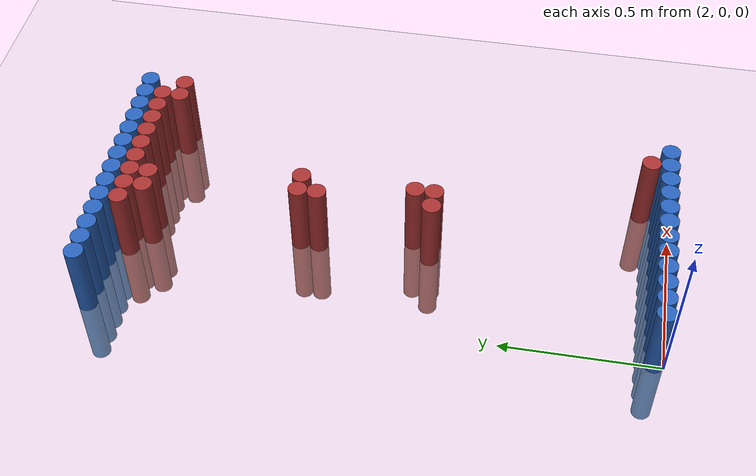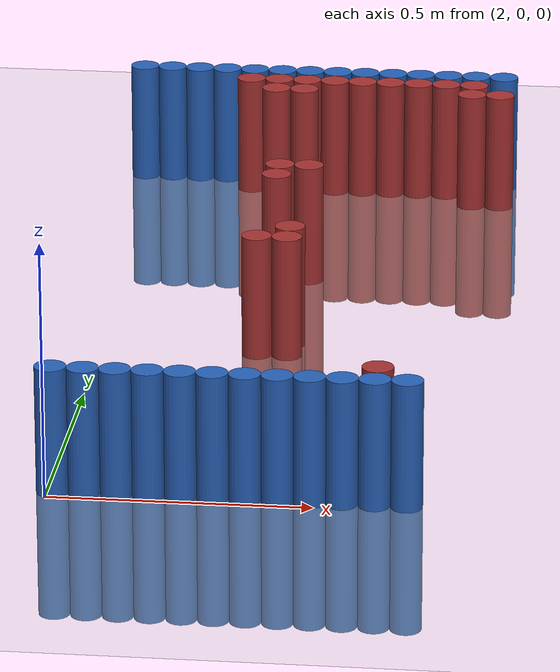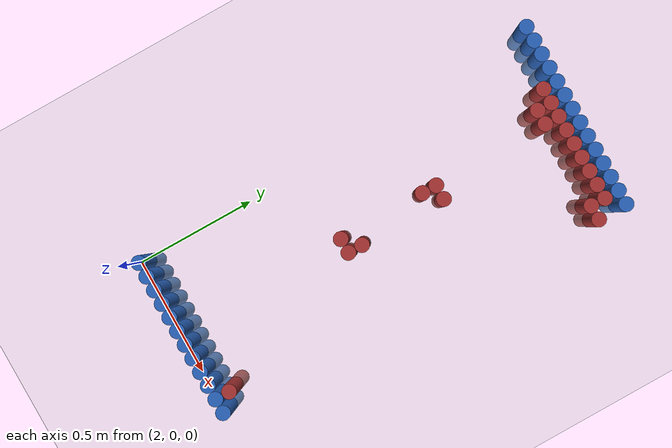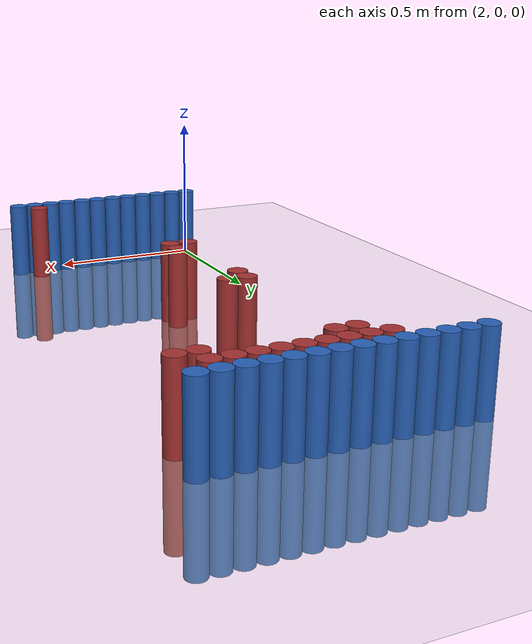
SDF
<sdf version="1.6">
 <world name="default">
  <model name="ground_plane">
   <static>1</static>
   <link name="link">
    <collision name="collision">
     <geometry><plane><normal>0 0 1</normal><size>100 100</size></plane></geometry>
     <surface><friction><ode><mu>100</mu><mu2>50</mu2></ode></friction></surface>
    </collision>
    <visual name="visual">
     <cast_shadows>0</cast_shadows>
     <geometry><plane><normal>0 0 1</normal><size>100 100</size></plane></geometry>
     <material>
      <script><uri>file://media/materials/scripts/gazebo.material</uri><name>Gazebo/Grey</name></script>
     </material>
    </visual>
   </link>
  </model>
  <model name="unit_cylinder_92">
   <static>1</static>
   <pose>1.950000 1.770000 0.000000 0.000000 0.000000 0.000000</pose>
   <link name="link">
    <inertial>
     <mass>1</mass>
     <inertia><ixx>0.145833</ixx><ixy>0</ixy><ixz>0</ixz><iyy>0.145833</iyy><iyz>0</iyz><izz>0.125</izz></inertia>
    </inertial>
    <collision name="collision">
     <geometry><cylinder><radius>0.030000</radius><length>0.5</length></cylinder></geometry>
    </collision>
    <visual name="visual">
     <geometry><cylinder><radius>0.030000</radius><length>0.5</length></cylinder></geometry>
     <material>
      <ambient>0.152000 0.379000 0.720000 1</ambient>
      <diffuse>0.152000 0.379000 0.720000 1</diffuse>
     </material>
     <material>
      <script><name>Gazebo/Grey</name><uri>file://media/materials/scripts/gazebo.material</uri></script>
     </material>
    </visual>
   </link>
  </model>
  <model name="unit_cylinder_93">
   <static>1</static>
   <pose>2.010000 0.030000 0.000000 0.000000 0.000000 0.000000</pose>
   <link name="link">
    <inertial>
     <mass>1</mass>
     <inertia><ixx>0.145833</ixx><ixy>0</ixy><ixz>0</ixz><iyy>0.145833</iyy><iyz>0</iyz><izz>0.125</izz></inertia>
    </inertial>
    <collision name="collision">
     <geometry><cylinder><radius>0.030000</radius><length>0.5</length></cylinder></geometry>
    </collision>
    <visual name="visual">
     <geometry><cylinder><radius>0.030000</radius><length>0.5</length></cylinder></geometry>
     <material>
      <ambient>0.152000 0.379000 0.720000 1</ambient>
      <diffuse>0.152000 0.379000 0.720000 1</diffuse>
     </material>
     <material>
      <script><name>Gazebo/Grey</name><uri>file://media/materials/scripts/gazebo.material</uri></script>
     </material>
    </visual>
   </link>
  </model>
  <model name="unit_cylinder_94">
   <static>1</static>
   <pose>2.010000 1.770000 0.000000 0.000000 0.000000 0.000000</pose>
   <link name="link">
    <inertial>
     <mass>1</mass>
     <inertia><ixx>0.145833</ixx><ixy>0</ixy><ixz>0</ixz><iyy>0.145833</iyy><iyz>0</iyz><izz>0.125</izz></inertia>
    </inertial>
    <collision name="collision">
     <geometry><cylinder><radius>0.030000</radius><length>0.5</length></cylinder></geometry>
    </collision>
    <visual name="visual">
     <geometry><cylinder><radius>0.030000</radius><length>0.5</length></cylinder></geometry>
     <material>
      <ambient>0.152000 0.379000 0.720000 1</ambient>
      <diffuse>0.152000 0.379000 0.720000 1</diffuse>
     </material>
     <material>
      <script><name>Gazebo/Grey</name><uri>file://media/materials/scripts/gazebo.material</uri></script>
     </material>
    </visual>
   </link>
  </model>
  <model name="unit_cylinder_95">
   <static>1</static>
   <pose>2.070000 1.770000 0.000000 0.000000 0.000000 0.000000</pose>
   <link name="link">
    <inertial>
     <mass>1</mass>
     <inertia><ixx>0.145833</ixx><ixy>0</ixy><ixz>0</ixz><iyy>0.145833</iyy><iyz>0</iyz><izz>0.125</izz></inertia>
    </inertial>
    <collision name="collision">
     <geometry><cylinder><radius>0.030000</radius><length>0.5</length></cylinder></geometry>
    </collision>
    <visual name="visual">
     <geometry><cylinder><radius>0.030000</radius><length>0.5</length></cylinder></geometry>
     <material>
      <ambient>0.152000 0.379000 0.720000 1</ambient>
      <diffuse>0.152000 0.379000 0.720000 1</diffuse>
     </material>
     <material>
      <script><name>Gazebo/Grey</name><uri>file://media/materials/scripts/gazebo.material</uri></script>
     </material>
    </visual>
   </link>
  </model>
  <model name="unit_cylinder_96">
   <static>1</static>
   <pose>2.130000 1.770000 0.000000 0.000000 0.000000 0.000000</pose>
   <link name="link">
    <inertial>
     <mass>1</mass>
     <inertia><ixx>0.145833</ixx><ixy>0</ixy><ixz>0</ixz><iyy>0.145833</iyy><iyz>0</iyz><izz>0.125</izz></inertia>
    </inertial>
    <collision name="collision">
     <geometry><cylinder><radius>0.030000</radius><length>0.5</length></cylinder></geometry>
    </collision>
    <visual name="visual">
     <geometry><cylinder><radius>0.030000</radius><length>0.5</length></cylinder></geometry>
     <material>
      <ambient>0.152000 0.379000 0.720000 1</ambient>
      <diffuse>0.152000 0.379000 0.720000 1</diffuse>
     </material>
     <material>
      <script><name>Gazebo/Grey</name><uri>file://media/materials/scripts/gazebo.material</uri></script>
     </material>
    </visual>
   </link>
  </model>
  <model name="unit_cylinder_97">
   <static>1</static>
   <pose>2.190000 1.770000 0.000000 0.000000 0.000000 0.000000</pose>
   <link name="link">
    <inertial>
     <mass>1</mass>
     <inertia><ixx>0.145833</ixx><ixy>0</ixy><ixz>0</ixz><iyy>0.145833</iyy><iyz>0</iyz><izz>0.125</izz></inertia>
    </inertial>
    <collision name="collision">
     <geometry><cylinder><radius>0.030000</radius><length>0.5</length></cylinder></geometry>
    </collision>
    <visual name="visual">
     <geometry><cylinder><radius>0.030000</radius><length>0.5</length></cylinder></geometry>
     <material>
      <ambient>0.152000 0.379000 0.720000 1</ambient>
      <diffuse>0.152000 0.379000 0.720000 1</diffuse>
     </material>
     <material>
      <script><name>Gazebo/Grey</name><uri>file://media/materials/scripts/gazebo.material</uri></script>
     </material>
    </visual>
   </link>
  </model>
  <model name="unit_cylinder_98">
   <static>1</static>
   <pose>2.250000 1.770000 0.000000 0.000000 0.000000 0.000000</pose>
   <link name="link">
    <inertial>
     <mass>1</mass>
     <inertia><ixx>0.145833</ixx><ixy>0</ixy><ixz>0</ixz><iyy>0.145833</iyy><iyz>0</iyz><izz>0.125</izz></inertia>
    </inertial>
    <collision name="collision">
     <geometry><cylinder><radius>0.030000</radius><length>0.5</length></cylinder></geometry>
    </collision>
    <visual name="visual">
     <geometry><cylinder><radius>0.030000</radius><length>0.5</length></cylinder></geometry>
     <material>
      <ambient>0.152000 0.379000 0.720000 1</ambient>
      <diffuse>0.152000 0.379000 0.720000 1</diffuse>
     </material>
     <material>
      <script><name>Gazebo/Grey</name><uri>file://media/materials/scripts/gazebo.material</uri></script>
     </material>
    </visual>
   </link>
  </model>
  <model name="unit_cylinder_99">
   <static>1</static>
   <pose>2.310000 1.770000 0.000000 0.000000 0.000000 0.000000</pose>
   <link name="link">
    <inertial>
     <mass>1</mass>
     <inertia><ixx>0.145833</ixx><ixy>0</ixy><ixz>0</ixz><iyy>0.145833</iyy><iyz>0</iyz><izz>0.125</izz></inertia>
    </inertial>
    <collision name="collision">
     <geometry><cylinder><radius>0.030000</radius><length>0.5</length></cylinder></geometry>
    </collision>
    <visual name="visual">
     <geometry><cylinder><radius>0.030000</radius><length>0.5</length></cylinder></geometry>
     <material>
      <ambient>0.152000 0.379000 0.720000 1</ambient>
      <diffuse>0.152000 0.379000 0.720000 1</diffuse>
     </material>
     <material>
      <script><name>Gazebo/Grey</name><uri>file://media/materials/scripts/gazebo.material</uri></script>
     </material>
    </visual>
   </link>
  </model>
  <model name="unit_cylinder_100">
   <static>1</static>
   <pose>2.370000 1.770000 0.000000 0.000000 0.000000 0.000000</pose>
   <link name="link">
    <inertial>
     <mass>1</mass>
     <inertia><ixx>0.145833</ixx><ixy>0</ixy><ixz>0</ixz><iyy>0.145833</iyy><iyz>0</iyz><izz>0.125</izz></inertia>
    </inertial>
    <collision name="collision">
     <geometry><cylinder><radius>0.030000</radius><length>0.5</length></cylinder></geometry>
    </collision>
    <visual name="visual">
     <geometry><cylinder><radius>0.030000</radius><length>0.5</length></cylinder></geometry>
     <material>
      <ambient>0.152000 0.379000 0.720000 1</ambient>
      <diffuse>0.152000 0.379000 0.720000 1</diffuse>
     </material>
     <material>
      <script><name>Gazebo/Grey</name><uri>file://media/materials/scripts/gazebo.material</uri></script>
     </material>
    </visual>
   </link>
  </model>
  <model name="unit_cylinder_101">
   <static>1</static>
   <pose>2.430000 1.770000 0.000000 0.000000 0.000000 0.000000</pose>
   <link name="link">
    <inertial>
     <mass>1</mass>
     <inertia><ixx>0.145833</ixx><ixy>0</ixy><ixz>0</ixz><iyy>0.145833</iyy><iyz>0</iyz><izz>0.125</izz></inertia>
    </inertial>
    <collision name="collision">
     <geometry><cylinder><radius>0.030000</radius><length>0.5</length></cylinder></geometry>
    </collision>
    <visual name="visual">
     <geometry><cylinder><radius>0.030000</radius><length>0.5</length></cylinder></geometry>
     <material>
      <ambient>0.152000 0.379000 0.720000 1</ambient>
      <diffuse>0.152000 0.379000 0.720000 1</diffuse>
     </material>
     <material>
      <script><name>Gazebo/Grey</name><uri>file://media/materials/scripts/gazebo.material</uri></script>
     </material>
    </visual>
   </link>
  </model>
  <model name="unit_cylinder_102">
   <static>1</static>
   <pose>2.490000 1.770000 0.000000 0.000000 0.000000 0.000000</pose>
   <link name="link">
    <inertial>
     <mass>1</mass>
     <inertia><ixx>0.145833</ixx><ixy>0</ixy><ixz>0</ixz><iyy>0.145833</iyy><iyz>0</iyz><izz>0.125</izz></inertia>
    </inertial>
    <collision name="collision">
     <geometry><cylinder><radius>0.030000</radius><length>0.5</length></cylinder></geometry>
    </collision>
    <visual name="visual">
     <geometry><cylinder><radius>0.030000</radius><length>0.5</length></cylinder></geometry>
     <material>
      <ambient>0.152000 0.379000 0.720000 1</ambient>
      <diffuse>0.152000 0.379000 0.720000 1</diffuse>
     </material>
     <material>
      <script><name>Gazebo/Grey</name><uri>file://media/materials/scripts/gazebo.material</uri></script>
     </material>
    </visual>
   </link>
  </model>
  <model name="unit_cylinder_103">
   <static>1</static>
   <pose>2.550000 1.770000 0.000000 0.000000 0.000000 0.000000</pose>
   <link name="link">
    <inertial>
     <mass>1</mass>
     <inertia><ixx>0.145833</ixx><ixy>0</ixy><ixz>0</ixz><iyy>0.145833</iyy><iyz>0</iyz><izz>0.125</izz></inertia>
    </inertial>
    <collision name="collision">
     <geometry><cylinder><radius>0.030000</radius><length>0.5</length></cylinder></geometry>
    </collision>
    <visual name="visual">
     <geometry><cylinder><radius>0.030000</radius><length>0.5</length></cylinder></geometry>
     <material>
      <ambient>0.152000 0.379000 0.720000 1</ambient>
      <diffuse>0.152000 0.379000 0.720000 1</diffuse>
     </material>
     <material>
      <script><name>Gazebo/Grey</name><uri>file://media/materials/scripts/gazebo.material</uri></script>
     </material>
    </visual>
   </link>
  </model>
  <model name="unit_cylinder_104">
   <static>1</static>
   <pose>2.610000 1.770000 0.000000 0.000000 0.000000 0.000000</pose>
   <link name="link">
    <inertial>
     <mass>1</mass>
     <inertia><ixx>0.145833</ixx><ixy>0</ixy><ixz>0</ixz><iyy>0.145833</iyy><iyz>0</iyz><izz>0.125</izz></inertia>
    </inertial>
    <collision name="collision">
     <geometry><cylinder><radius>0.030000</radius><length>0.5</length></cylinder></geometry>
    </collision>
    <visual name="visual">
     <geometry><cylinder><radius>0.030000</radius><length>0.5</length></cylinder></geometry>
     <material>
      <ambient>0.152000 0.379000 0.720000 1</ambient>
      <diffuse>0.152000 0.379000 0.720000 1</diffuse>
     </material>
     <material>
      <script><name>Gazebo/Grey</name><uri>file://media/materials/scripts/gazebo.material</uri></script>
     </material>
    </visual>
   </link>
  </model>
  <model name="unit_cylinder_105">
   <static>1</static>
   <pose>2.670000 1.770000 0.000000 0.000000 0.000000 0.000000</pose>
   <link name="link">
    <inertial>
     <mass>1</mass>
     <inertia><ixx>0.145833</ixx><ixy>0</ixy><ixz>0</ixz><iyy>0.145833</iyy><iyz>0</iyz><izz>0.125</izz></inertia>
    </inertial>
    <collision name="collision">
     <geometry><cylinder><radius>0.030000</radius><length>0.5</length></cylinder></geometry>
    </collision>
    <visual name="visual">
     <geometry><cylinder><radius>0.030000</radius><length>0.5</length></cylinder></geometry>
     <material>
      <ambient>0.152000 0.379000 0.720000 1</ambient>
      <diffuse>0.152000 0.379000 0.720000 1</diffuse>
     </material>
     <material>
      <script><name>Gazebo/Grey</name><uri>file://media/materials/scripts/gazebo.material</uri></script>
     </material>
    </visual>
   </link>
  </model>
  <model name="unit_cylinder_106">
   <static>1</static>
   <pose>2.730000 1.770000 0.000000 0.000000 0.000000 0.000000</pose>
   <link name="link">
    <inertial>
     <mass>1</mass>
     <inertia><ixx>0.145833</ixx><ixy>0</ixy><ixz>0</ixz><iyy>0.145833</iyy><iyz>0</iyz><izz>0.125</izz></inertia>
    </inertial>
    <collision name="collision">
     <geometry><cylinder><radius>0.030000</radius><length>0.5</length></cylinder></geometry>
    </collision>
    <visual name="visual">
     <geometry><cylinder><radius>0.030000</radius><length>0.5</length></cylinder></geometry>
     <material>
      <ambient>0.152000 0.379000 0.720000 1</ambient>
      <diffuse>0.152000 0.379000 0.720000 1</diffuse>
     </material>
     <material>
      <script><name>Gazebo/Grey</name><uri>file://media/materials/scripts/gazebo.material</uri></script>
     </material>
    </visual>
   </link>
  </model>
  <model name="unit_cylinder_125">
   <static>1</static>
   <pose>2.190000 1.710000 0.000000 0.000000 0.000000 0.000000</pose>
   <link name="link">
    <inertial>
     <mass>1</mass>
     <inertia><ixx>0.145833</ixx><ixy>0</ixy><ixz>0</ixz><iyy>0.145833</iyy><iyz>0</iyz><izz>0.125</izz></inertia>
    </inertial>
    <collision name="collision">
     <geometry><cylinder><radius>0.030000</radius><length>0.5</length></cylinder></geometry>
    </collision>
    <visual name="visual">
     <geometry><cylinder><radius>0.030000</radius><length>0.5</length></cylinder></geometry>
     <material>
      <ambient>0.648000 0.192000 0.192000 1</ambient>
      <diffuse>0.648000 0.192000 0.192000 1</diffuse>
     </material>
     <material>
      <script><name>Gazebo/Grey</name><uri>file://media/materials/scripts/gazebo.material</uri></script>
     </material>
    </visual>
   </link>
  </model>
  <model name="unit_cylinder_126">
   <static>1</static>
   <pose>2.250000 1.710000 0.000000 0.000000 0.000000 0.000000</pose>
   <link name="link">
    <inertial>
     <mass>1</mass>
     <inertia><ixx>0.145833</ixx><ixy>0</ixy><ixz>0</ixz><iyy>0.145833</iyy><iyz>0</iyz><izz>0.125</izz></inertia>
    </inertial>
    <collision name="collision">
     <geometry><cylinder><radius>0.030000</radius><length>0.5</length></cylinder></geometry>
    </collision>
    <visual name="visual">
     <geometry><cylinder><radius>0.030000</radius><length>0.5</length></cylinder></geometry>
     <material>
      <ambient>0.648000 0.192000 0.192000 1</ambient>
      <diffuse>0.648000 0.192000 0.192000 1</diffuse>
     </material>
     <material>
      <script><name>Gazebo/Grey</name><uri>file://media/materials/scripts/gazebo.material</uri></script>
     </material>
    </visual>
   </link>
  </model>
  <model name="unit_cylinder_127">
   <static>1</static>
   <pose>2.310000 1.710000 0.000000 0.000000 0.000000 0.000000</pose>
   <link name="link">
    <inertial>
     <mass>1</mass>
     <inertia><ixx>0.145833</ixx><ixy>0</ixy><ixz>0</ixz><iyy>0.145833</iyy><iyz>0</iyz><izz>0.125</izz></inertia>
    </inertial>
    <collision name="collision">
     <geometry><cylinder><radius>0.030000</radius><length>0.5</length></cylinder></geometry>
    </collision>
    <visual name="visual">
     <geometry><cylinder><radius>0.030000</radius><length>0.5</length></cylinder></geometry>
     <material>
      <ambient>0.648000 0.192000 0.192000 1</ambient>
      <diffuse>0.648000 0.192000 0.192000 1</diffuse>
     </material>
     <material>
      <script><name>Gazebo/Grey</name><uri>file://media/materials/scripts/gazebo.material</uri></script>
     </material>
    </visual>
   </link>
  </model>
  <model name="unit_cylinder_128">
   <static>1</static>
   <pose>2.370000 1.710000 0.000000 0.000000 0.000000 0.000000</pose>
   <link name="link">
    <inertial>
     <mass>1</mass>
     <inertia><ixx>0.145833</ixx><ixy>0</ixy><ixz>0</ixz><iyy>0.145833</iyy><iyz>0</iyz><izz>0.125</izz></inertia>
    </inertial>
    <collision name="collision">
     <geometry><cylinder><radius>0.030000</radius><length>0.5</length></cylinder></geometry>
    </collision>
    <visual name="visual">
     <geometry><cylinder><radius>0.030000</radius><length>0.5</length></cylinder></geometry>
     <material>
      <ambient>0.648000 0.192000 0.192000 1</ambient>
      <diffuse>0.648000 0.192000 0.192000 1</diffuse>
     </material>
     <material>
      <script><name>Gazebo/Grey</name><uri>file://media/materials/scripts/gazebo.material</uri></script>
     </material>
    </visual>
   </link>
  </model>
  <model name="unit_cylinder_129">
   <static>1</static>
   <pose>2.430000 1.710000 0.000000 0.000000 0.000000 0.000000</pose>
   <link name="link">
    <inertial>
     <mass>1</mass>
     <inertia><ixx>0.145833</ixx><ixy>0</ixy><ixz>0</ixz><iyy>0.145833</iyy><iyz>0</iyz><izz>0.125</izz></inertia>
    </inertial>
    <collision name="collision">
     <geometry><cylinder><radius>0.030000</radius><length>0.5</length></cylinder></geometry>
    </collision>
    <visual name="visual">
     <geometry><cylinder><radius>0.030000</radius><length>0.5</length></cylinder></geometry>
     <material>
      <ambient>0.648000 0.192000 0.192000 1</ambient>
      <diffuse>0.648000 0.192000 0.192000 1</diffuse>
     </material>
     <material>
      <script><name>Gazebo/Grey</name><uri>file://media/materials/scripts/gazebo.material</uri></script>
     </material>
    </visual>
   </link>
  </model>
  <model name="unit_cylinder_130">
   <static>1</static>
   <pose>2.490000 1.710000 0.000000 0.000000 0.000000 0.000000</pose>
   <link name="link">
    <inertial>
     <mass>1</mass>
     <inertia><ixx>0.145833</ixx><ixy>0</ixy><ixz>0</ixz><iyy>0.145833</iyy><iyz>0</iyz><izz>0.125</izz></inertia>
    </inertial>
    <collision name="collision">
     <geometry><cylinder><radius>0.030000</radius><length>0.5</length></cylinder></geometry>
    </collision>
    <visual name="visual">
     <geometry><cylinder><radius>0.030000</radius><length>0.5</length></cylinder></geometry>
     <material>
      <ambient>0.648000 0.192000 0.192000 1</ambient>
      <diffuse>0.648000 0.192000 0.192000 1</diffuse>
     </material>
     <material>
      <script><name>Gazebo/Grey</name><uri>file://media/materials/scripts/gazebo.material</uri></script>
     </material>
    </visual>
   </link>
  </model>
  <model name="unit_cylinder_131">
   <static>1</static>
   <pose>2.550000 1.710000 0.000000 0.000000 0.000000 0.000000</pose>
   <link name="link">
    <inertial>
     <mass>1</mass>
     <inertia><ixx>0.145833</ixx><ixy>0</ixy><ixz>0</ixz><iyy>0.145833</iyy><iyz>0</iyz><izz>0.125</izz></inertia>
    </inertial>
    <collision name="collision">
     <geometry><cylinder><radius>0.030000</radius><length>0.5</length></cylinder></geometry>
    </collision>
    <visual name="visual">
     <geometry><cylinder><radius>0.030000</radius><length>0.5</length></cylinder></geometry>
     <material>
      <ambient>0.648000 0.192000 0.192000 1</ambient>
      <diffuse>0.648000 0.192000 0.192000 1</diffuse>
     </material>
     <material>
      <script><name>Gazebo/Grey</name><uri>file://media/materials/scripts/gazebo.material</uri></script>
     </material>
    </visual>
   </link>
  </model>
  <model name="unit_cylinder_132">
   <static>1</static>
   <pose>2.610000 1.710000 0.000000 0.000000 0.000000 0.000000</pose>
   <link name="link">
    <inertial>
     <mass>1</mass>
     <inertia><ixx>0.145833</ixx><ixy>0</ixy><ixz>0</ixz><iyy>0.145833</iyy><iyz>0</iyz><izz>0.125</izz></inertia>
    </inertial>
    <collision name="collision">
     <geometry><cylinder><radius>0.030000</radius><length>0.5</length></cylinder></geometry>
    </collision>
    <visual name="visual">
     <geometry><cylinder><radius>0.030000</radius><length>0.5</length></cylinder></geometry>
     <material>
      <ambient>0.648000 0.192000 0.192000 1</ambient>
      <diffuse>0.648000 0.192000 0.192000 1</diffuse>
     </material>
     <material>
      <script><name>Gazebo/Grey</name><uri>file://media/materials/scripts/gazebo.material</uri></script>
     </material>
    </visual>
   </link>
  </model>
  <model name="unit_cylinder_133">
   <static>1</static>
   <pose>2.670000 1.710000 0.000000 0.000000 0.000000 0.000000</pose>
   <link name="link">
    <inertial>
     <mass>1</mass>
     <inertia><ixx>0.145833</ixx><ixy>0</ixy><ixz>0</ixz><iyy>0.145833</iyy><iyz>0</iyz><izz>0.125</izz></inertia>
    </inertial>
    <collision name="collision">
     <geometry><cylinder><radius>0.030000</radius><length>0.5</length></cylinder></geometry>
    </collision>
    <visual name="visual">
     <geometry><cylinder><radius>0.030000</radius><length>0.5</length></cylinder></geometry>
     <material>
      <ambient>0.648000 0.192000 0.192000 1</ambient>
      <diffuse>0.648000 0.192000 0.192000 1</diffuse>
     </material>
     <material>
      <script><name>Gazebo/Grey</name><uri>file://media/materials/scripts/gazebo.material</uri></script>
     </material>
    </visual>
   </link>
  </model>
  <model name="unit_cylinder_140">
   <static>1</static>
   <pose>2.250000 1.650000 0.000000 0.000000 0.000000 0.000000</pose>
   <link name="link">
    <inertial>
     <mass>1</mass>
     <inertia><ixx>0.145833</ixx><ixy>0</ixy><ixz>0</ixz><iyy>0.145833</iyy><iyz>0</iyz><izz>0.125</izz></inertia>
    </inertial>
    <collision name="collision">
     <geometry><cylinder><radius>0.030000</radius><length>0.5</length></cylinder></geometry>
    </collision>
    <visual name="visual">
     <geometry><cylinder><radius>0.030000</radius><length>0.5</length></cylinder></geometry>
     <material>
      <ambient>0.648000 0.192000 0.192000 1</ambient>
      <diffuse>0.648000 0.192000 0.192000 1</diffuse>
     </material>
     <material>
      <script><name>Gazebo/Grey</name><uri>file://media/materials/scripts/gazebo.material</uri></script>
     </material>
    </visual>
   </link>
  </model>
  <model name="unit_cylinder_141">
   <static>1</static>
   <pose>2.310000 1.650000 0.000000 0.000000 0.000000 0.000000</pose>
   <link name="link">
    <inertial>
     <mass>1</mass>
     <inertia><ixx>0.145833</ixx><ixy>0</ixy><ixz>0</ixz><iyy>0.145833</iyy><iyz>0</iyz><izz>0.125</izz></inertia>
    </inertial>
    <collision name="collision">
     <geometry><cylinder><radius>0.030000</radius><length>0.5</length></cylinder></geometry>
    </collision>
    <visual name="visual">
     <geometry><cylinder><radius>0.030000</radius><length>0.5</length></cylinder></geometry>
     <material>
      <ambient>0.648000 0.192000 0.192000 1</ambient>
      <diffuse>0.648000 0.192000 0.192000 1</diffuse>
     </material>
     <material>
      <script><name>Gazebo/Grey</name><uri>file://media/materials/scripts/gazebo.material</uri></script>
     </material>
    </visual>
   </link>
  </model>
  <model name="unit_cylinder_142">
   <static>1</static>
   <pose>2.670000 1.650000 0.000000 0.000000 0.000000 0.000000</pose>
   <link name="link">
    <inertial>
     <mass>1</mass>
     <inertia><ixx>0.145833</ixx><ixy>0</ixy><ixz>0</ixz><iyy>0.145833</iyy><iyz>0</iyz><izz>0.125</izz></inertia>
    </inertial>
    <collision name="collision">
     <geometry><cylinder><radius>0.030000</radius><length>0.5</length></cylinder></geometry>
    </collision>
    <visual name="visual">
     <geometry><cylinder><radius>0.030000</radius><length>0.5</length></cylinder></geometry>
     <material>
      <ambient>0.648000 0.192000 0.192000 1</ambient>
      <diffuse>0.648000 0.192000 0.192000 1</diffuse>
     </material>
     <material>
      <script><name>Gazebo/Grey</name><uri>file://media/materials/scripts/gazebo.material</uri></script>
     </material>
    </visual>
   </link>
  </model>
  <model name="unit_cylinder_143">
   <static>1</static>
   <pose>2.730000 1.650000 0.000000 0.000000 0.000000 0.000000</pose>
   <link name="link">
    <inertial>
     <mass>1</mass>
     <inertia><ixx>0.145833</ixx><ixy>0</ixy><ixz>0</ixz><iyy>0.145833</iyy><iyz>0</iyz><izz>0.125</izz></inertia>
    </inertial>
    <collision name="collision">
     <geometry><cylinder><radius>0.030000</radius><length>0.5</length></cylinder></geometry>
    </collision>
    <visual name="visual">
     <geometry><cylinder><radius>0.030000</radius><length>0.5</length></cylinder></geometry>
     <material>
      <ambient>0.648000 0.192000 0.192000 1</ambient>
      <diffuse>0.648000 0.192000 0.192000 1</diffuse>
     </material>
     <material>
      <script><name>Gazebo/Grey</name><uri>file://media/materials/scripts/gazebo.material</uri></script>
     </material>
    </visual>
   </link>
  </model>
  <model name="unit_cylinder_153">
   <static>1</static>
   <pose>2.310000 1.170000 0.000000 0.000000 0.000000 0.000000</pose>
   <link name="link">
    <inertial>
     <mass>1</mass>
     <inertia><ixx>0.145833</ixx><ixy>0</ixy><ixz>0</ixz><iyy>0.145833</iyy><iyz>0</iyz><izz>0.125</izz></inertia>
    </inertial>
    <collision name="collision">
     <geometry><cylinder><radius>0.030000</radius><length>0.5</length></cylinder></geometry>
    </collision>
    <visual name="visual">
     <geometry><cylinder><radius>0.030000</radius><length>0.5</length></cylinder></geometry>
     <material>
      <ambient>0.648000 0.192000 0.192000 1</ambient>
      <diffuse>0.648000 0.192000 0.192000 1</diffuse>
     </material>
     <material>
      <script><name>Gazebo/Grey</name><uri>file://media/materials/scripts/gazebo.material</uri></script>
     </material>
    </visual>
   </link>
  </model>
  <model name="unit_cylinder_154">
   <static>1</static>
   <pose>2.370000 1.170000 0.000000 0.000000 0.000000 0.000000</pose>
   <link name="link">
    <inertial>
     <mass>1</mass>
     <inertia><ixx>0.145833</ixx><ixy>0</ixy><ixz>0</ixz><iyy>0.145833</iyy><iyz>0</iyz><izz>0.125</izz></inertia>
    </inertial>
    <collision name="collision">
     <geometry><cylinder><radius>0.030000</radius><length>0.5</length></cylinder></geometry>
    </collision>
    <visual name="visual">
     <geometry><cylinder><radius>0.030000</radius><length>0.5</length></cylinder></geometry>
     <material>
      <ambient>0.648000 0.192000 0.192000 1</ambient>
      <diffuse>0.648000 0.192000 0.192000 1</diffuse>
     </material>
     <material>
      <script><name>Gazebo/Grey</name><uri>file://media/materials/scripts/gazebo.material</uri></script>
     </material>
    </visual>
   </link>
  </model>
  <model name="unit_cylinder_155">
   <static>1</static>
   <pose>2.310000 1.110000 0.000000 0.000000 0.000000 0.000000</pose>
   <link name="link">
    <inertial>
     <mass>1</mass>
     <inertia><ixx>0.145833</ixx><ixy>0</ixy><ixz>0</ixz><iyy>0.145833</iyy><iyz>0</iyz><izz>0.125</izz></inertia>
    </inertial>
    <collision name="collision">
     <geometry><cylinder><radius>0.030000</radius><length>0.5</length></cylinder></geometry>
    </collision>
    <visual name="visual">
     <geometry><cylinder><radius>0.030000</radius><length>0.5</length></cylinder></geometry>
     <material>
      <ambient>0.648000 0.192000 0.192000 1</ambient>
      <diffuse>0.648000 0.192000 0.192000 1</diffuse>
     </material>
     <material>
      <script><name>Gazebo/Grey</name><uri>file://media/materials/scripts/gazebo.material</uri></script>
     </material>
    </visual>
   </link>
  </model>
  <model name="unit_cylinder_176">
   <static>1</static>
   <pose>2.370000 0.810000 0.000000 0.000000 0.000000 0.000000</pose>
   <link name="link">
    <inertial>
     <mass>1</mass>
     <inertia><ixx>0.145833</ixx><ixy>0</ixy><ixz>0</ixz><iyy>0.145833</iyy><iyz>0</iyz><izz>0.125</izz></inertia>
    </inertial>
    <collision name="collision">
     <geometry><cylinder><radius>0.030000</radius><length>0.5</length></cylinder></geometry>
    </collision>
    <visual name="visual">
     <geometry><cylinder><radius>0.030000</radius><length>0.5</length></cylinder></geometry>
     <material>
      <ambient>0.648000 0.192000 0.192000 1</ambient>
      <diffuse>0.648000 0.192000 0.192000 1</diffuse>
     </material>
     <material>
      <script><name>Gazebo/Grey</name><uri>file://media/materials/scripts/gazebo.material</uri></script>
     </material>
    </visual>
   </link>
  </model>
  <model name="unit_cylinder_180">
   <static>1</static>
   <pose>2.310000 0.750000 0.000000 0.000000 0.000000 0.000000</pose>
   <link name="link">
    <inertial>
     <mass>1</mass>
     <inertia><ixx>0.145833</ixx><ixy>0</ixy><ixz>0</ixz><iyy>0.145833</iyy><iyz>0</iyz><izz>0.125</izz></inertia>
    </inertial>
    <collision name="collision">
     <geometry><cylinder><radius>0.030000</radius><length>0.5</length></cylinder></geometry>
    </collision>
    <visual name="visual">
     <geometry><cylinder><radius>0.030000</radius><length>0.5</length></cylinder></geometry>
     <material>
      <ambient>0.648000 0.192000 0.192000 1</ambient>
      <diffuse>0.648000 0.192000 0.192000 1</diffuse>
     </material>
     <material>
      <script><name>Gazebo/Grey</name><uri>file://media/materials/scripts/gazebo.material</uri></script>
     </material>
    </visual>
   </link>
  </model>
  <model name="unit_cylinder_181">
   <static>1</static>
   <pose>2.370000 0.750000 0.000000 0.000000 0.000000 0.000000</pose>
   <link name="link">
    <inertial>
     <mass>1</mass>
     <inertia><ixx>0.145833</ixx><ixy>0</ixy><ixz>0</ixz><iyy>0.145833</iyy><iyz>0</iyz><izz>0.125</izz></inertia>
    </inertial>
    <collision name="collision">
     <geometry><cylinder><radius>0.030000</radius><length>0.5</length></cylinder></geometry>
    </collision>
    <visual name="visual">
     <geometry><cylinder><radius>0.030000</radius><length>0.5</length></cylinder></geometry>
     <material>
      <ambient>0.648000 0.192000 0.192000 1</ambient>
      <diffuse>0.648000 0.192000 0.192000 1</diffuse>
     </material>
     <material>
      <script><name>Gazebo/Grey</name><uri>file://media/materials/scripts/gazebo.material</uri></script>
     </material>
    </visual>
   </link>
  </model>
  <model name="unit_cylinder_197">
   <static>1</static>
   <pose>2.610000 0.090000 0.000000 0.000000 0.000000 0.000000</pose>
   <link name="link">
    <inertial>
     <mass>1</mass>
     <inertia><ixx>0.145833</ixx><ixy>0</ixy><ixz>0</ixz><iyy>0.145833</iyy><iyz>0</iyz><izz>0.125</izz></inertia>
    </inertial>
    <collision name="collision">
     <geometry><cylinder><radius>0.030000</radius><length>0.5</length></cylinder></geometry>
    </collision>
    <visual name="visual">
     <geometry><cylinder><radius>0.030000</radius><length>0.5</length></cylinder></geometry>
     <material>
      <ambient>0.648000 0.192000 0.192000 1</ambient>
      <diffuse>0.648000 0.192000 0.192000 1</diffuse>
     </material>
     <material>
      <script><name>Gazebo/Grey</name><uri>file://media/materials/scripts/gazebo.material</uri></script>
     </material>
    </visual>
   </link>
  </model>
  <model name="unit_cylinder_201">
   <static>1</static>
   <pose>2.070000 0.030000 0.000000 0.000000 0.000000 0.000000</pose>
   <link name="link">
    <inertial>
     <mass>1</mass>
     <inertia><ixx>0.145833</ixx><ixy>0</ixy><ixz>0</ixz><iyy>0.145833</iyy><iyz>0</iyz><izz>0.125</izz></inertia>
    </inertial>
    <collision name="collision">
     <geometry><cylinder><radius>0.030000</radius><length>0.5</length></cylinder></geometry>
    </collision>
    <visual name="visual">
     <geometry><cylinder><radius>0.030000</radius><length>0.5</length></cylinder></geometry>
     <material>
      <ambient>0.152000 0.379000 0.720000 1</ambient>
      <diffuse>0.152000 0.379000 0.720000 1</diffuse>
     </material>
     <material>
      <script><name>Gazebo/Grey</name><uri>file://media/materials/scripts/gazebo.material</uri></script>
     </material>
    </visual>
   </link>
  </model>
  <model name="unit_cylinder_202">
   <static>1</static>
   <pose>2.130000 0.030000 0.000000 0.000000 0.000000 0.000000</pose>
   <link name="link">
    <inertial>
     <mass>1</mass>
     <inertia><ixx>0.145833</ixx><ixy>0</ixy><ixz>0</ixz><iyy>0.145833</iyy><iyz>0</iyz><izz>0.125</izz></inertia>
    </inertial>
    <collision name="collision">
     <geometry><cylinder><radius>0.030000</radius><length>0.5</length></cylinder></geometry>
    </collision>
    <visual name="visual">
     <geometry><cylinder><radius>0.030000</radius><length>0.5</length></cylinder></geometry>
     <material>
      <ambient>0.152000 0.379000 0.720000 1</ambient>
      <diffuse>0.152000 0.379000 0.720000 1</diffuse>
     </material>
     <material>
      <script><name>Gazebo/Grey</name><uri>file://media/materials/scripts/gazebo.material</uri></script>
     </material>
    </visual>
   </link>
  </model>
  <model name="unit_cylinder_203">
   <static>1</static>
   <pose>2.190000 0.030000 0.000000 0.000000 0.000000 0.000000</pose>
   <link name="link">
    <inertial>
     <mass>1</mass>
     <inertia><ixx>0.145833</ixx><ixy>0</ixy><ixz>0</ixz><iyy>0.145833</iyy><iyz>0</iyz><izz>0.125</izz></inertia>
    </inertial>
    <collision name="collision">
     <geometry><cylinder><radius>0.030000</radius><length>0.5</length></cylinder></geometry>
    </collision>
    <visual name="visual">
     <geometry><cylinder><radius>0.030000</radius><length>0.5</length></cylinder></geometry>
     <material>
      <ambient>0.152000 0.379000 0.720000 1</ambient>
      <diffuse>0.152000 0.379000 0.720000 1</diffuse>
     </material>
     <material>
      <script><name>Gazebo/Grey</name><uri>file://media/materials/scripts/gazebo.material</uri></script>
     </material>
    </visual>
   </link>
  </model>
  <model name="unit_cylinder_204">
   <static>1</static>
   <pose>2.250000 0.030000 0.000000 0.000000 0.000000 0.000000</pose>
   <link name="link">
    <inertial>
     <mass>1</mass>
     <inertia><ixx>0.145833</ixx><ixy>0</ixy><ixz>0</ixz><iyy>0.145833</iyy><iyz>0</iyz><izz>0.125</izz></inertia>
    </inertial>
    <collision name="collision">
     <geometry><cylinder><radius>0.030000</radius><length>0.5</length></cylinder></geometry>
    </collision>
    <visual name="visual">
     <geometry><cylinder><radius>0.030000</radius><length>0.5</length></cylinder></geometry>
     <material>
      <ambient>0.152000 0.379000 0.720000 1</ambient>
      <diffuse>0.152000 0.379000 0.720000 1</diffuse>
     </material>
     <material>
      <script><name>Gazebo/Grey</name><uri>file://media/materials/scripts/gazebo.material</uri></script>
     </material>
    </visual>
   </link>
  </model>
  <model name="unit_cylinder_205">
   <static>1</static>
   <pose>2.310000 0.030000 0.000000 0.000000 0.000000 0.000000</pose>
   <link name="link">
    <inertial>
     <mass>1</mass>
     <inertia><ixx>0.145833</ixx><ixy>0</ixy><ixz>0</ixz><iyy>0.145833</iyy><iyz>0</iyz><izz>0.125</izz></inertia>
    </inertial>
    <collision name="collision">
     <geometry><cylinder><radius>0.030000</radius><length>0.5</length></cylinder></geometry>
    </collision>
    <visual name="visual">
     <geometry><cylinder><radius>0.030000</radius><length>0.5</length></cylinder></geometry>
     <material>
      <ambient>0.152000 0.379000 0.720000 1</ambient>
      <diffuse>0.152000 0.379000 0.720000 1</diffuse>
     </material>
     <material>
      <script><name>Gazebo/Grey</name><uri>file://media/materials/scripts/gazebo.material</uri></script>
     </material>
    </visual>
   </link>
  </model>
  <model name="unit_cylinder_206">
   <static>1</static>
   <pose>2.370000 0.030000 0.000000 0.000000 0.000000 0.000000</pose>
   <link name="link">
    <inertial>
     <mass>1</mass>
     <inertia><ixx>0.145833</ixx><ixy>0</ixy><ixz>0</ixz><iyy>0.145833</iyy><iyz>0</iyz><izz>0.125</izz></inertia>
    </inertial>
    <collision name="collision">
     <geometry><cylinder><radius>0.030000</radius><length>0.5</length></cylinder></geometry>
    </collision>
    <visual name="visual">
     <geometry><cylinder><radius>0.030000</radius><length>0.5</length></cylinder></geometry>
     <material>
      <ambient>0.152000 0.379000 0.720000 1</ambient>
      <diffuse>0.152000 0.379000 0.720000 1</diffuse>
     </material>
     <material>
      <script><name>Gazebo/Grey</name><uri>file://media/materials/scripts/gazebo.material</uri></script>
     </material>
    </visual>
   </link>
  </model>
  <model name="unit_cylinder_207">
   <static>1</static>
   <pose>2.430000 0.030000 0.000000 0.000000 0.000000 0.000000</pose>
   <link name="link">
    <inertial>
     <mass>1</mass>
     <inertia><ixx>0.145833</ixx><ixy>0</ixy><ixz>0</ixz><iyy>0.145833</iyy><iyz>0</iyz><izz>0.125</izz></inertia>
    </inertial>
    <collision name="collision">
     <geometry><cylinder><radius>0.030000</radius><length>0.5</length></cylinder></geometry>
    </collision>
    <visual name="visual">
     <geometry><cylinder><radius>0.030000</radius><length>0.5</length></cylinder></geometry>
     <material>
      <ambient>0.152000 0.379000 0.720000 1</ambient>
      <diffuse>0.152000 0.379000 0.720000 1</diffuse>
     </material>
     <material>
      <script><name>Gazebo/Grey</name><uri>file://media/materials/scripts/gazebo.material</uri></script>
     </material>
    </visual>
   </link>
  </model>
  <model name="unit_cylinder_208">
   <static>1</static>
   <pose>2.490000 0.030000 0.000000 0.000000 0.000000 0.000000</pose>
   <link name="link">
    <inertial>
     <mass>1</mass>
     <inertia><ixx>0.145833</ixx><ixy>0</ixy><ixz>0</ixz><iyy>0.145833</iyy><iyz>0</iyz><izz>0.125</izz></inertia>
    </inertial>
    <collision name="collision">
     <geometry><cylinder><radius>0.030000</radius><length>0.5</length></cylinder></geometry>
    </collision>
    <visual name="visual">
     <geometry><cylinder><radius>0.030000</radius><length>0.5</length></cylinder></geometry>
     <material>
      <ambient>0.152000 0.379000 0.720000 1</ambient>
      <diffuse>0.152000 0.379000 0.720000 1</diffuse>
     </material>
     <material>
      <script><name>Gazebo/Grey</name><uri>file://media/materials/scripts/gazebo.material</uri></script>
     </material>
    </visual>
   </link>
  </model>
  <model name="unit_cylinder_209">
   <static>1</static>
   <pose>2.550000 0.030000 0.000000 0.000000 0.000000 0.000000</pose>
   <link name="link">
    <inertial>
     <mass>1</mass>
     <inertia><ixx>0.145833</ixx><ixy>0</ixy><ixz>0</ixz><iyy>0.145833</iyy><iyz>0</iyz><izz>0.125</izz></inertia>
    </inertial>
    <collision name="collision">
     <geometry><cylinder><radius>0.030000</radius><length>0.5</length></cylinder></geometry>
    </collision>
    <visual name="visual">
     <geometry><cylinder><radius>0.030000</radius><length>0.5</length></cylinder></geometry>
     <material>
      <ambient>0.152000 0.379000 0.720000 1</ambient>
      <diffuse>0.152000 0.379000 0.720000 1</diffuse>
     </material>
     <material>
      <script><name>Gazebo/Grey</name><uri>file://media/materials/scripts/gazebo.material</uri></script>
     </material>
    </visual>
   </link>
  </model>
  <model name="unit_cylinder_210">
   <static>1</static>
   <pose>2.610000 0.030000 0.000000 0.000000 0.000000 0.000000</pose>
   <link name="link">
    <inertial>
     <mass>1</mass>
     <inertia><ixx>0.145833</ixx><ixy>0</ixy><ixz>0</ixz><iyy>0.145833</iyy><iyz>0</iyz><izz>0.125</izz></inertia>
    </inertial>
    <collision name="collision">
     <geometry><cylinder><radius>0.030000</radius><length>0.5</length></cylinder></geometry>
    </collision>
    <visual name="visual">
     <geometry><cylinder><radius>0.030000</radius><length>0.5</length></cylinder></geometry>
     <material>
      <ambient>0.152000 0.379000 0.720000 1</ambient>
      <diffuse>0.152000 0.379000 0.720000 1</diffuse>
     </material>
     <material>
      <script><name>Gazebo/Grey</name><uri>file://media/materials/scripts/gazebo.material</uri></script>
     </material>
    </visual>
   </link>
  </model>
  <model name="unit_cylinder_211">
   <static>1</static>
   <pose>2.670000 0.030000 0.000000 0.000000 0.000000 0.000000</pose>
   <link name="link">
    <inertial>
     <mass>1</mass>
     <inertia><ixx>0.145833</ixx><ixy>0</ixy><ixz>0</ixz><iyy>0.145833</iyy><iyz>0</iyz><izz>0.125</izz></inertia>
    </inertial>
    <collision name="collision">
     <geometry><cylinder><radius>0.030000</radius><length>0.5</length></cylinder></geometry>
    </collision>
    <visual name="visual">
     <geometry><cylinder><radius>0.030000</radius><length>0.5</length></cylinder></geometry>
     <material>
      <ambient>0.152000 0.379000 0.720000 1</ambient>
      <diffuse>0.152000 0.379000 0.720000 1</diffuse>
     </material>
     <material>
      <script><name>Gazebo/Grey</name><uri>file://media/materials/scripts/gazebo.material</uri></script>
     </material>
    </visual>
   </link>
  </model>
 </world>
</sdf>
